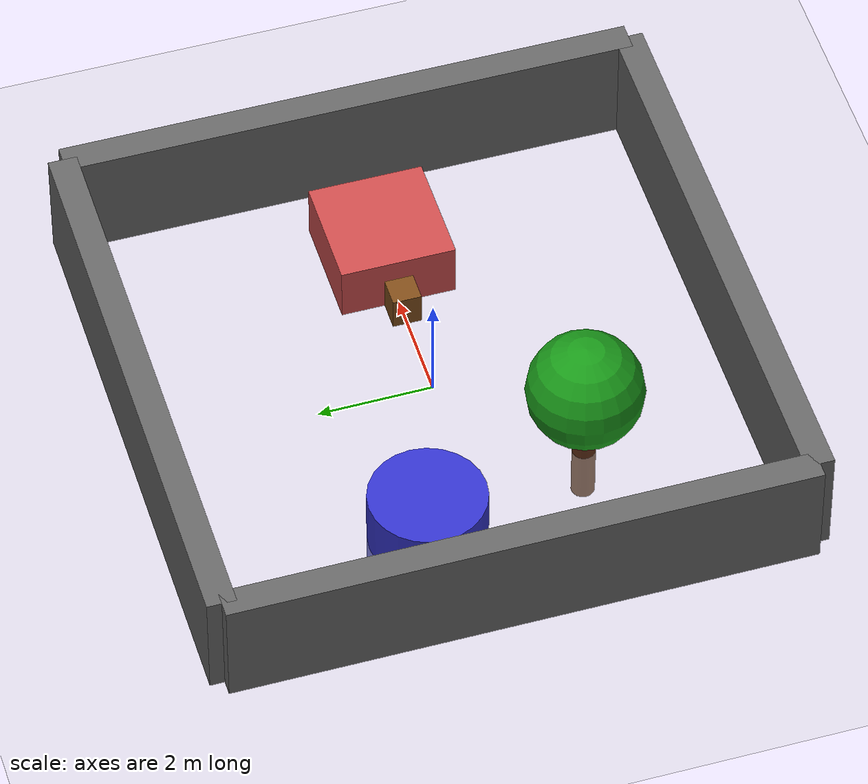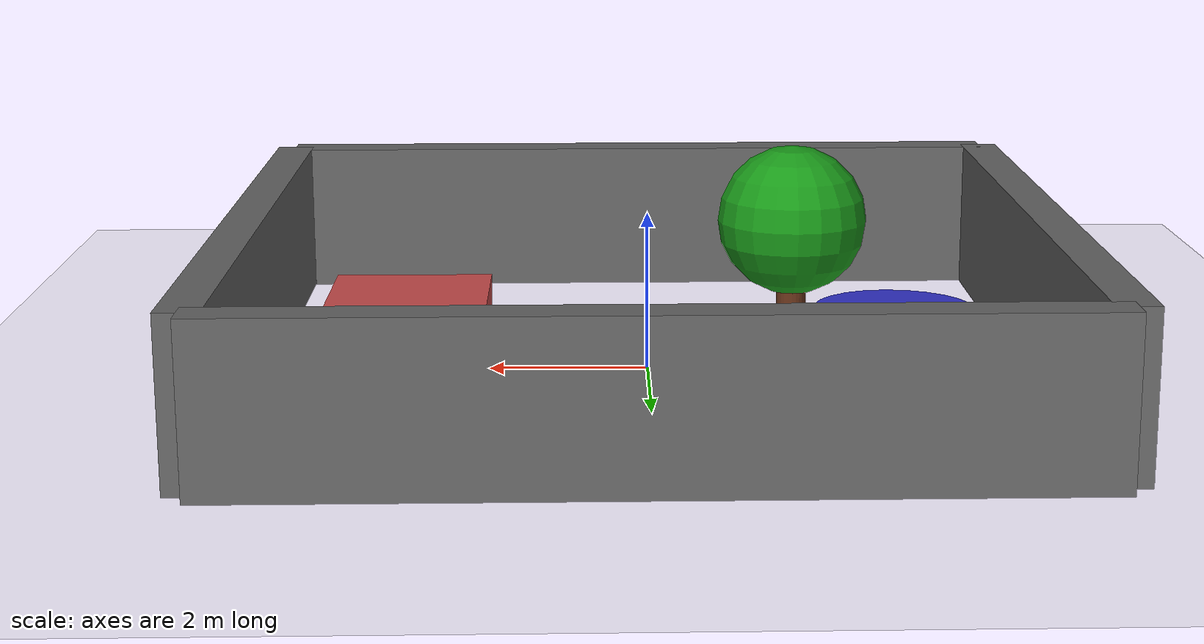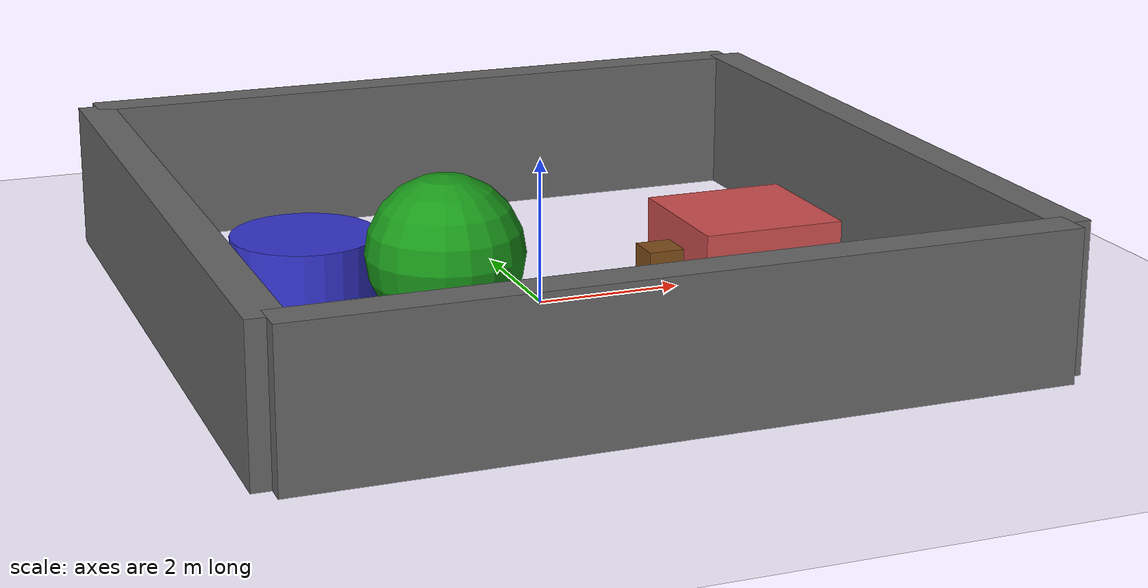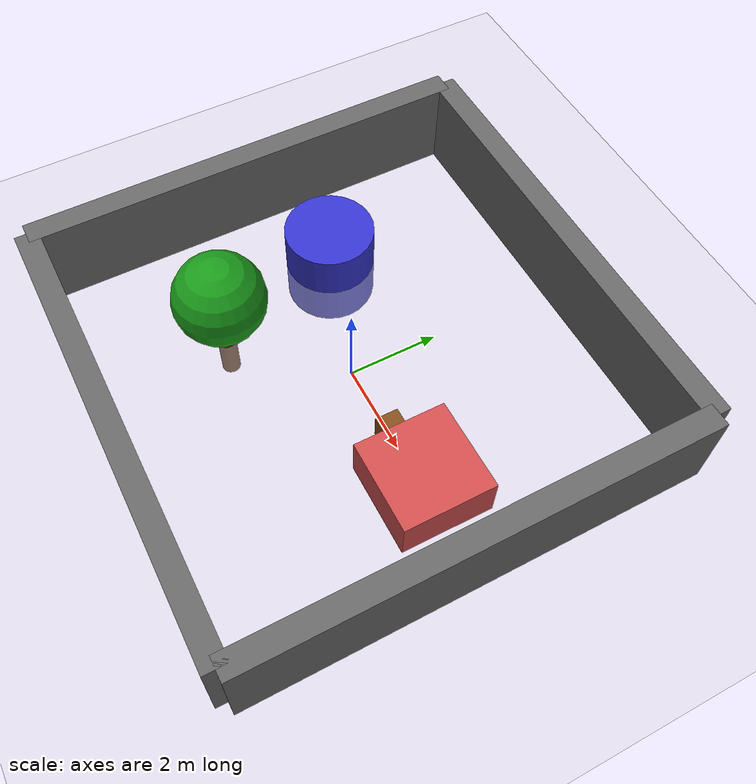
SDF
<?xml version="1.0" ?>
<sdf version="1.7">
  <world name="extended_yard">
    <gravity>0 0 -9.81</gravity>

    <!-- Luz direccional como reemplazo del sol -->
    <light name="sun_light" type="directional">
    <cast_shadows>true</cast_shadows>
    <pose>0 0 0 0 0 0</pose>
    <specular>0.2 0.2 0.2 1</specular>
    <attenuation>
        <range>100</range>
        <constant>0.9</constant>
        <linear>0.01</linear>
        <quadratic>0.001</quadratic>
    </attenuation>
    <direction>0 0 -1</direction> <!-- Directo hacia abajo -->
    </light>

    <model name='ground_plane'>
      <static>1</static>
      <link name='link'>
        <collision name='collision'>
          <geometry>
            <plane>
              <normal>0 0 1</normal>
              <size>100 100</size>
            </plane>
          </geometry>
          <surface>
            <friction>
              <ode>
                <mu>100</mu>
                <mu2>50</mu2>
              </ode>
              <torsional>
                <ode/>
              </torsional>
            </friction>
            <contact>
              <ode/>
            </contact>
            <bounce/>
          </surface>
          <max_contacts>10</max_contacts>
        </collision>
        <visual name='visual'>
          <cast_shadows>0</cast_shadows>
          <geometry>
            <plane>
              <normal>0 0 1</normal>
              <size>100 100</size>
            </plane>
          </geometry>
          <material>
            <script>
              <uri>file://media/materials/scripts/gazebo.material</uri>
              <name>Gazebo/Grey</name>
            </script>
          </material>
        </visual>
        <self_collide>0</self_collide>
        <kinematic>0</kinematic>
        <gravity>1</gravity>
      </link>
    </model>

    <!-- Obstáculo 1: Caja -->
    <model name="box_obstacle_1">
      <static>true</static>
      <pose>3 0 0.5 0 0 0</pose>
      <link name="link">
        <collision name="collision">
          <geometry>
            <box><size>2 2 1</size></box>
          </geometry>
        </collision>
        <visual name="visual">
          <geometry>
            <box><size>2 2 1</size></box>
          </geometry>
          <material>
            <ambient>0.8 0.3 0.3 1</ambient>
          </material>
        </visual>
      </link>
    </model>

    <!-- Obstáculo 2: Cilindro -->
    <model name="cylinder_obstacle1">
      <static>true</static>
      <pose>-3 1 0 0 0 0</pose>
      <link name="link">
        <collision name="collision">
          <geometry>
            <cylinder><radius>1</radius><length>2</length></cylinder>
          </geometry>
        </collision>
        <visual name="visual">
          <geometry>
            <cylinder><radius>1</radius><length>2</length></cylinder>
          </geometry>
          <material>
            <ambient>0.2 0.2 0.8 1</ambient>
          </material>
        </visual>
      </link>
    </model>
<!-- Caja de muros formando un recinto cerrado centrado en 10,10 -->

    <!-- Muro superior -->
    <model name="wall_top">
    <static>true</static>
    <pose>0 -5 1 0 0 0</pose>
    <link name="link">
        <collision name="collision">
        <geometry>
            <box><size>10 0.5 2</size></box>
        </geometry>
        </collision>
        <visual name="visual">
        <geometry>
            <box><size>10 0.5 2</size></box>
        </geometry>
        <material><ambient>0.4 0.4 0.4 1</ambient></material>
        </visual>
    </link>
    </model>

    <!-- Muro inferior -->
    <model name="wall_bottom">
    <static>true</static>
    <pose>0 5 1 0 0 0</pose>
    <link name="link">
        <collision name="collision">
        <geometry>
            <box><size>10 0.5 2</size></box>
        </geometry>
        </collision>
        <visual name="visual">
        <geometry>
            <box><size>10 0.5 2</size></box>
        </geometry>
        <material><ambient>0.4 0.4 0.4 1</ambient></material>
        </visual>
    </link>
    </model>

    <!-- Muro izquierdo -->
    <model name="wall_left">
    <static>true</static>
    <pose>-5 0 1 0 0 0</pose>
    <link name="link">
        <collision name="collision">
        <geometry>
            <box><size>0.5 10 2</size></box>
        </geometry>
        </collision>
        <visual name="visual">
        <geometry>
            <box><size>0.5 10 2</size></box>
        </geometry>
        <material><ambient>0.4 0.4 0.4 1</ambient></material>
        </visual>
    </link>
    </model>

    <!-- Muro derecho -->
    <model name="wall_right">
    <static>true</static>
    <pose>5 0 1 0 0 0</pose>
    <link name="link">
        <collision name="collision">
        <geometry>
            <box><size>0.5 10 2</size></box>
        </geometry>
        </collision>
        <visual name="visual">
        <geometry>
            <box><size>0.5 10 2</size></box>
        </geometry>
        <material><ambient>0.4 0.4 0.4 1</ambient></material>
        </visual>
    </link>
    </model>

    <!-- Árbol decorativo (cilindro + esfera) -->
    <model name="tree_1">
      <static>true</static>
      <pose>-2 -2 0 0 0 0</pose>
      <link name="link">
        <collision name="trunk">
          <geometry>
            <cylinder><radius>0.2</radius><length>2</length></cylinder>
          </geometry>
        </collision>
        <visual name="trunk">
          <geometry>
            <cylinder><radius>0.2</radius><length>2</length></cylinder>
          </geometry>
          <material><ambient>0.4 0.2 0.1 1</ambient></material>
        </visual>
        <visual name="leaves">
          <pose>0 0 1.5 0 0 0</pose>
          <geometry>
            <sphere><radius>1.0</radius></sphere>
          </geometry>
          <material><ambient>0.1 0.6 0.1 1</ambient></material>
        </visual>
      </link>
    </model>

    <!-- Banco como obstáculo urbano -->
    <model name="bench">
      <static>true</static>
      <pose>2.5 0 0.3 0 0 0</pose>
      <link name="link">
        <collision name="collision">
          <geometry>
            <box><size>2 0.5 0.6</size></box>
          </geometry>
        </collision>
        <visual name="visual">
          <geometry>
            <box><size>2 0.5 0.6</size></box>
          </geometry>
          <material>
            <ambient>0.5 0.3 0.1 1</ambient>
          </material>
        </visual>
      </link>
    </model>

  </world>
</sdf>
